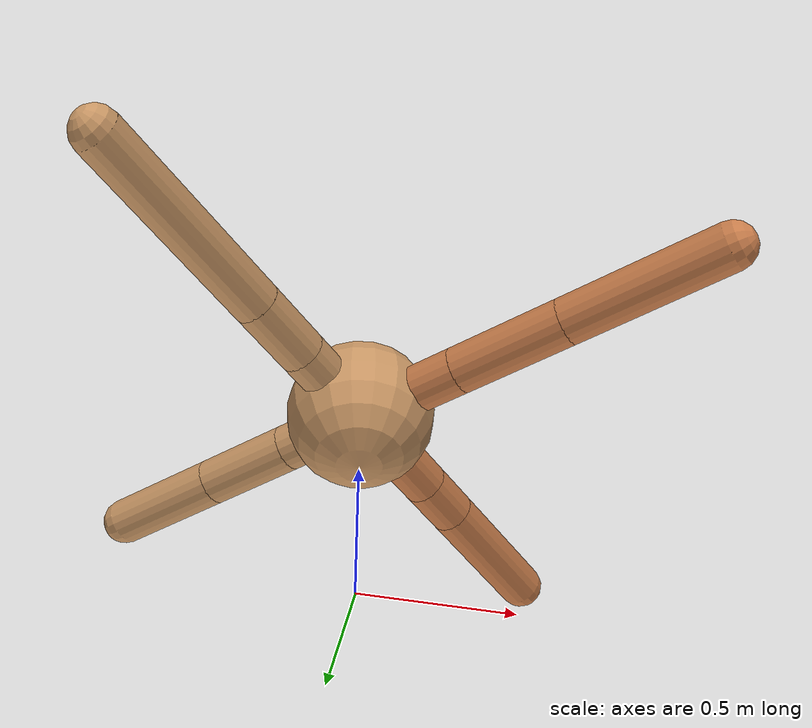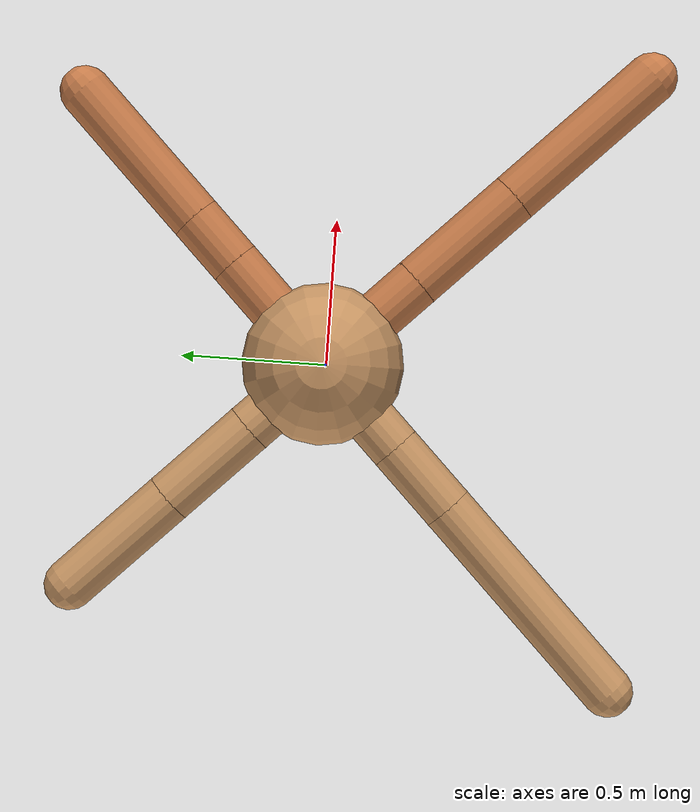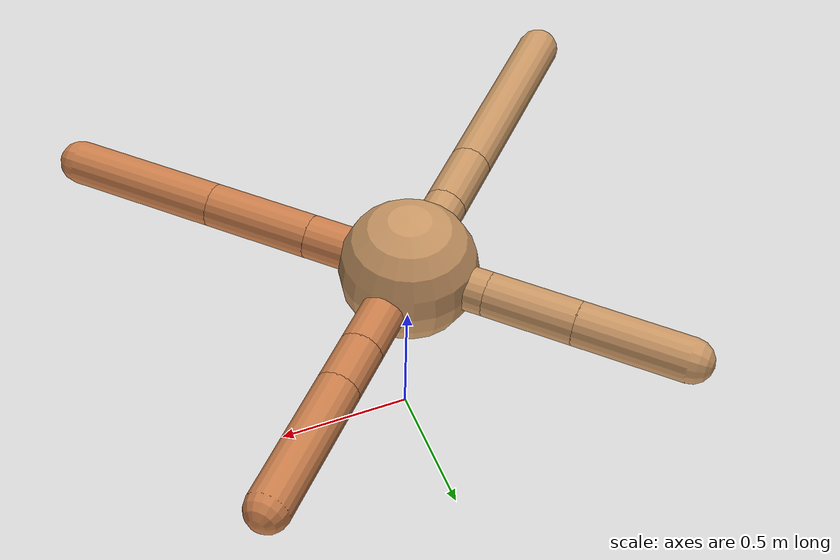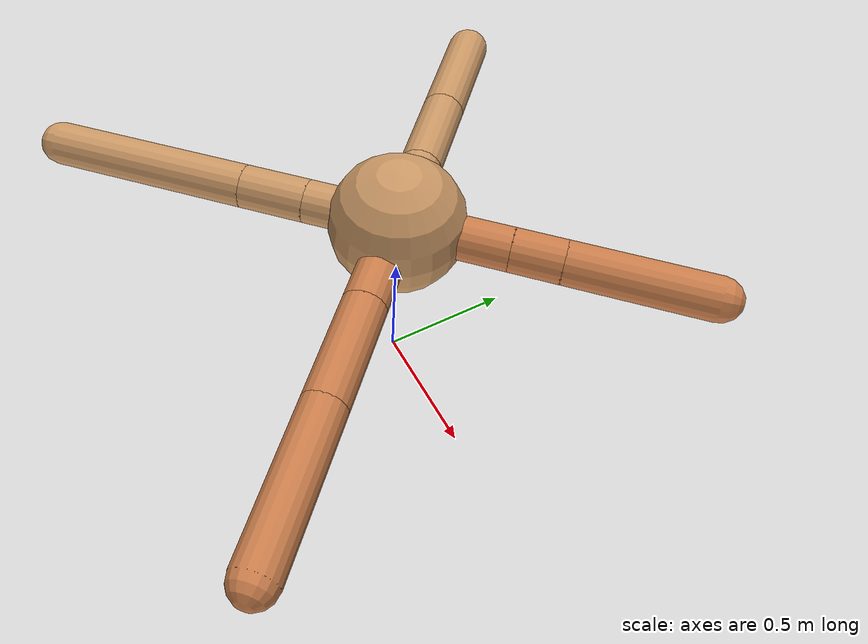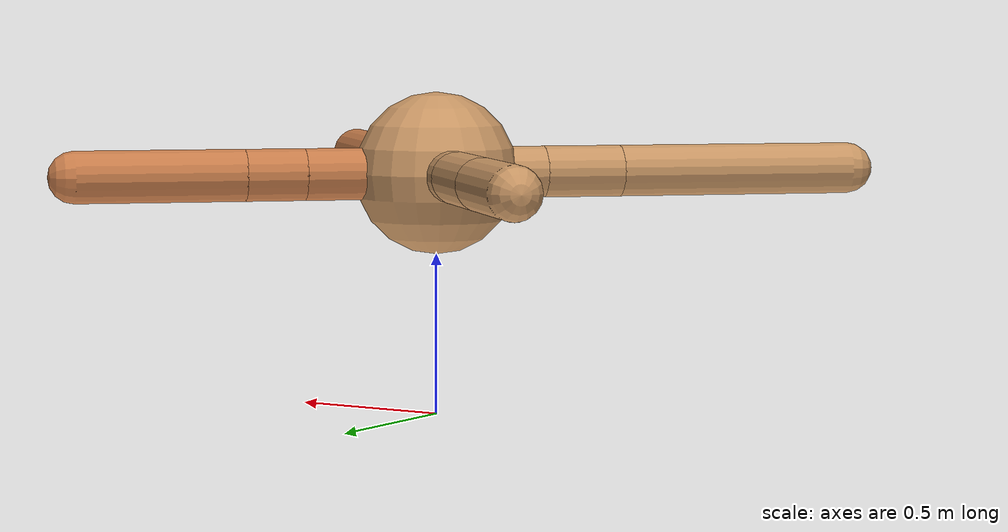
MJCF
<mujoco model="ant">
  <compiler angle="degree" coordinate="local" inertiafromgeom="true" />
  <option integrator="RK4" timestep="0.01" />
  <custom>
    <numeric data="0.0 0.0 0.55 1.0 0.0 0.0 0.0 0.0 1.0 0.0 -1.0 0.0 -1.0 0.0 1.0" name="init_qpos" />
  </custom>
  <default>
    <joint armature="1" damping="1" limited="true" />
    <geom conaffinity="0" condim="3" density="5.0" friction="1.5 0.1 0.1" margin="0.01" rgba="0.8 0.6 0.4 1" />
  </default>
  <worldbody>
    <body name="torso" pos="0 0 0.75">
      <geom name="torso_geom" pos="0 0 0" size="0.25" type="sphere" />

      <body name="front_left_leg" pos="0 0 0">
        <geom fromto="0.0 0.0 0.0 0.29015766245262614 0.29015766245262614 0.0" name="aux_1_geom" size="0.08" type="capsule" rgba=".8 .5 .3 1" />
        <body name="aux_1" pos="0.29015766245262614 0.29015766245262614 0.0">
          <joint axis="0 0 1" name="hip_1" pos="0.0 0.0 0.0" range="-40 40" type="hinge" />
          <geom fromto="0.0 0.0 0.0 0.1296927185337415 0.1296927185337415 0.0" name="left_leg_geom" size="0.08" type="capsule" rgba=".8 .5 .3 1" />
          <body pos="0.1296927185337415 0.1296927185337415 0.0" name="front_left_foot">
            <joint axis="-1 1 0" name="ankle_1" pos="0.0 0.0 0.0" range="30 100" type="hinge" />
            <geom fromto="0.0 0.0 0.0 0.36578481424698955 0.36578481424698955 0.0" name="left_ankle_geom" size="0.08" type="capsule" rgba=".8 .5 .3 1" />
          </body>
        </body>
      </body>
      <body name="front_right_leg" pos="0 0 0">
        <geom fromto="0.0 0.0 0.0 -0.21151415572464247 0.21151415572464247 0.0" name="aux_2_geom" size="0.08" type="capsule" />
        <body name="aux_2" pos="-0.21151415572464247 0.21151415572464247 0.0">
          <joint axis="0 0 1" name="hip_2" pos="0.0 0.0 0.0" range="-40 40" type="hinge" />
          <geom fromto="0.0 0.0 0.0 -0.23148690040606376 0.23148690040606376 0.0" name="right_leg_geom" size="0.08" type="capsule" />
          <body pos="-0.23148690040606376 0.23148690040606376 0.0" name="front_right_foot">
            <joint axis="1 1 0" name="ankle_2" pos="0.0 0.0 0.0" range="-100 -30" type="hinge" />
            <geom fromto="0.0 0.0 0.0 -0.2853773873998407 0.2853773873998407 0.0" name="right_ankle_geom" size="0.08" type="capsule" />
          </body>
        </body>
      </body>
      <body name="left_back_leg" pos="0 0 0">
        <geom fromto="0.0 0.0 0.0 -0.24059743300325742 -0.24059743300325742 0.0" name="aux_3_geom" size="0.08" type="capsule" />
        <body name="aux_3" pos="-0.24059743300325742 -0.24059743300325742 0.0">
          <joint axis="0 0 1" name="hip_3" pos="0.0 0.0 0.0" range="-40 40" type="hinge" />
          <geom fromto="0.0 0.0 0.0 -0.17289173056622353 -0.17289173056622353 0.0" name="back_leg_geom" size="0.08" type="capsule" />
          <body pos="-0.17289173056622353 -0.17289173056622353 0.0" name="left_back_foot">
            <joint axis="-1 1 0" name="ankle_3" pos="0.0 0.0 0.0" range="-100 -30" type="hinge" />
            <geom fromto="0.0 0.0 0.0 -0.5286894956595966 -0.5286894956595966 0.0" name="third_ankle_geom" size="0.08" type="capsule" />
          </body>
        </body>
      </body>
      <body name="right_back_leg" pos="0 0 0">
        <geom fromto="0.0 0.0 0.0 0.2710594335698285 -0.2710594335698285 0.0" name="aux_4_geom" size="0.08" type="capsule" rgba=".8 .5 .3 1" />
        <body name="aux_4" pos="0.2710594335698285 -0.2710594335698285 0.0">
          <joint axis="0 0 1" name="hip_4" pos="0.0 0.0 0.0" range="-40 40" type="hinge" />
          <geom fromto="0.0 0.0 0.0 0.27844756759400013 -0.27844756759400013 0.0" name="rightback_leg_geom" size="0.08" type="capsule" rgba=".8 .5 .3 1" />
          <body pos="0.27844756759400013 -0.27844756759400013 0.0" name="right_back_foot">
            <joint axis="1 1 0" name="ankle_4" pos="0.0 0.0 0.0" range="30 100" type="hinge" />
            <geom fromto="0.0 0.0 0.0 0.3976435364701074 -0.3976435364701074 0.0" name="fourth_ankle_geom" size="0.08" type="capsule" rgba=".8 .5 .3 1" />
          </body>
        </body>
      </body>
    </body>
  </worldbody>
  <actuator>
    <motor ctrllimited="true" ctrlrange="-1.0 1.0" joint="hip_4" gear="150" />
    <motor ctrllimited="true" ctrlrange="-1.0 1.0" joint="ankle_4" gear="150" />
    <motor ctrllimited="true" ctrlrange="-1.0 1.0" joint="hip_1" gear="150" />
    <motor ctrllimited="true" ctrlrange="-1.0 1.0" joint="ankle_1" gear="150" />
    <motor ctrllimited="true" ctrlrange="-1.0 1.0" joint="hip_2" gear="150" />
    <motor ctrllimited="true" ctrlrange="-1.0 1.0" joint="ankle_2" gear="150" />
    <motor ctrllimited="true" ctrlrange="-1.0 1.0" joint="hip_3" gear="150" />
    <motor ctrllimited="true" ctrlrange="-1.0 1.0" joint="ankle_3" gear="150" />
  </actuator>
</mujoco>
